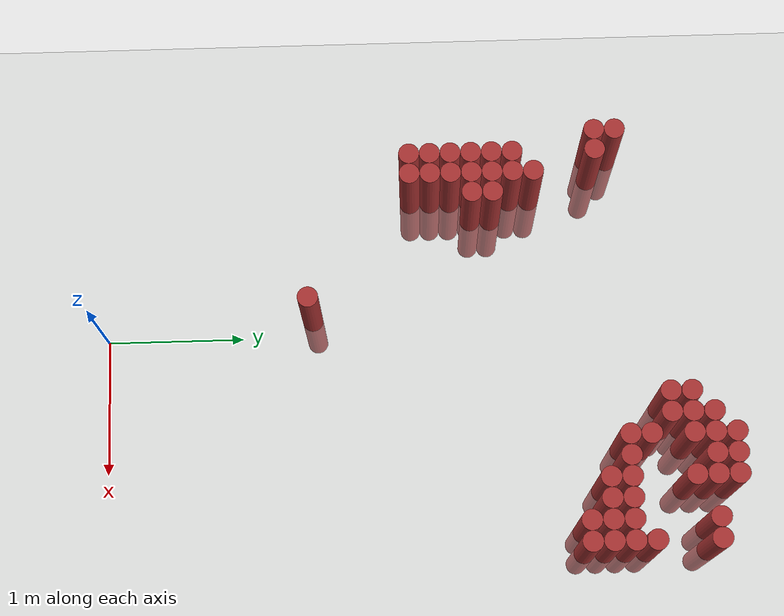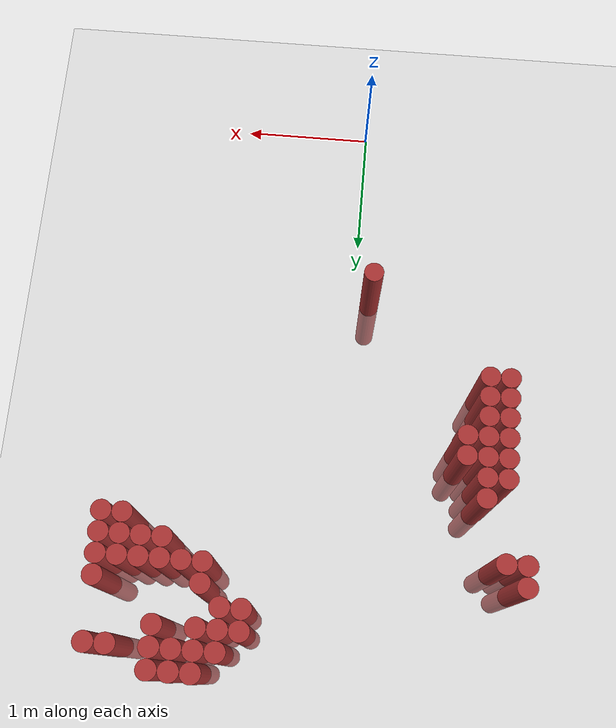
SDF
<sdf version="1.6">
 <world name="default">
  <model name="ground_plane">
   <static>1</static>
   <link name="link">
    <collision name="collision">
     <geometry><plane><normal>0 0 1</normal><size>100 100</size></plane></geometry>
     <surface><friction><ode><mu>100</mu><mu2>50</mu2></ode></friction></surface>
    </collision>
    <visual name="visual">
     <cast_shadows>0</cast_shadows>
     <geometry><plane><normal>0 0 1</normal><size>100 100</size></plane></geometry>
     <material>
      <script><uri>file://media/materials/scripts/gazebo.material</uri><name>Gazebo/Grey</name></script>
     </material>
    </visual>
   </link>
  </model>
  <model name="unit_cylinder_158">
   <static>1</static>
   <pose>-1.325000 3.625000 0.000000 0.000000 0.000000 0.000000</pose>
   <link name="link">
    <inertial>
     <mass>1</mass>
     <inertia><ixx>0.145833</ixx><ixy>0</ixy><ixz>0</ixz><iyy>0.145833</iyy><iyz>0</iyz><izz>0.125</izz></inertia>
    </inertial>
    <collision name="collision">
     <geometry><cylinder><radius>0.075000</radius><length>1.5</length></cylinder></geometry>
    </collision>
    <visual name="visual">
     <geometry><cylinder><radius>0.075000</radius><length>1.5</length></cylinder></geometry>
     <material>
      <ambient>0.648000 0.192000 0.192000 1</ambient>
      <diffuse>0.648000 0.192000 0.192000 1</diffuse>
     </material>
     <material>
      <script><name>Gazebo/Grey</name><uri>file://media/materials/scripts/gazebo.material</uri></script>
     </material>
    </visual>
   </link>
  </model>
  <model name="unit_cylinder_159">
   <static>1</static>
   <pose>-1.325000 3.775000 0.000000 0.000000 0.000000 0.000000</pose>
   <link name="link">
    <inertial>
     <mass>1</mass>
     <inertia><ixx>0.145833</ixx><ixy>0</ixy><ixz>0</ixz><iyy>0.145833</iyy><iyz>0</iyz><izz>0.125</izz></inertia>
    </inertial>
    <collision name="collision">
     <geometry><cylinder><radius>0.075000</radius><length>1.5</length></cylinder></geometry>
    </collision>
    <visual name="visual">
     <geometry><cylinder><radius>0.075000</radius><length>1.5</length></cylinder></geometry>
     <material>
      <ambient>0.648000 0.192000 0.192000 1</ambient>
      <diffuse>0.648000 0.192000 0.192000 1</diffuse>
     </material>
     <material>
      <script><name>Gazebo/Grey</name><uri>file://media/materials/scripts/gazebo.material</uri></script>
     </material>
    </visual>
   </link>
  </model>
  <model name="unit_cylinder_160">
   <static>1</static>
   <pose>-1.175000 2.275000 0.000000 0.000000 0.000000 0.000000</pose>
   <link name="link">
    <inertial>
     <mass>1</mass>
     <inertia><ixx>0.145833</ixx><ixy>0</ixy><ixz>0</ixz><iyy>0.145833</iyy><iyz>0</iyz><izz>0.125</izz></inertia>
    </inertial>
    <collision name="collision">
     <geometry><cylinder><radius>0.075000</radius><length>1.5</length></cylinder></geometry>
    </collision>
    <visual name="visual">
     <geometry><cylinder><radius>0.075000</radius><length>1.5</length></cylinder></geometry>
     <material>
      <ambient>0.648000 0.192000 0.192000 1</ambient>
      <diffuse>0.648000 0.192000 0.192000 1</diffuse>
     </material>
     <material>
      <script><name>Gazebo/Grey</name><uri>file://media/materials/scripts/gazebo.material</uri></script>
     </material>
    </visual>
   </link>
  </model>
  <model name="unit_cylinder_161">
   <static>1</static>
   <pose>-1.175000 2.425000 0.000000 0.000000 0.000000 0.000000</pose>
   <link name="link">
    <inertial>
     <mass>1</mass>
     <inertia><ixx>0.145833</ixx><ixy>0</ixy><ixz>0</ixz><iyy>0.145833</iyy><iyz>0</iyz><izz>0.125</izz></inertia>
    </inertial>
    <collision name="collision">
     <geometry><cylinder><radius>0.075000</radius><length>1.5</length></cylinder></geometry>
    </collision>
    <visual name="visual">
     <geometry><cylinder><radius>0.075000</radius><length>1.5</length></cylinder></geometry>
     <material>
      <ambient>0.648000 0.192000 0.192000 1</ambient>
      <diffuse>0.648000 0.192000 0.192000 1</diffuse>
     </material>
     <material>
      <script><name>Gazebo/Grey</name><uri>file://media/materials/scripts/gazebo.material</uri></script>
     </material>
    </visual>
   </link>
  </model>
  <model name="unit_cylinder_162">
   <static>1</static>
   <pose>-1.175000 2.575000 0.000000 0.000000 0.000000 0.000000</pose>
   <link name="link">
    <inertial>
     <mass>1</mass>
     <inertia><ixx>0.145833</ixx><ixy>0</ixy><ixz>0</ixz><iyy>0.145833</iyy><iyz>0</iyz><izz>0.125</izz></inertia>
    </inertial>
    <collision name="collision">
     <geometry><cylinder><radius>0.075000</radius><length>1.5</length></cylinder></geometry>
    </collision>
    <visual name="visual">
     <geometry><cylinder><radius>0.075000</radius><length>1.5</length></cylinder></geometry>
     <material>
      <ambient>0.648000 0.192000 0.192000 1</ambient>
      <diffuse>0.648000 0.192000 0.192000 1</diffuse>
     </material>
     <material>
      <script><name>Gazebo/Grey</name><uri>file://media/materials/scripts/gazebo.material</uri></script>
     </material>
    </visual>
   </link>
  </model>
  <model name="unit_cylinder_163">
   <static>1</static>
   <pose>-1.175000 2.725000 0.000000 0.000000 0.000000 0.000000</pose>
   <link name="link">
    <inertial>
     <mass>1</mass>
     <inertia><ixx>0.145833</ixx><ixy>0</ixy><ixz>0</ixz><iyy>0.145833</iyy><iyz>0</iyz><izz>0.125</izz></inertia>
    </inertial>
    <collision name="collision">
     <geometry><cylinder><radius>0.075000</radius><length>1.5</length></cylinder></geometry>
    </collision>
    <visual name="visual">
     <geometry><cylinder><radius>0.075000</radius><length>1.5</length></cylinder></geometry>
     <material>
      <ambient>0.648000 0.192000 0.192000 1</ambient>
      <diffuse>0.648000 0.192000 0.192000 1</diffuse>
     </material>
     <material>
      <script><name>Gazebo/Grey</name><uri>file://media/materials/scripts/gazebo.material</uri></script>
     </material>
    </visual>
   </link>
  </model>
  <model name="unit_cylinder_164">
   <static>1</static>
   <pose>-1.175000 2.875000 0.000000 0.000000 0.000000 0.000000</pose>
   <link name="link">
    <inertial>
     <mass>1</mass>
     <inertia><ixx>0.145833</ixx><ixy>0</ixy><ixz>0</ixz><iyy>0.145833</iyy><iyz>0</iyz><izz>0.125</izz></inertia>
    </inertial>
    <collision name="collision">
     <geometry><cylinder><radius>0.075000</radius><length>1.5</length></cylinder></geometry>
    </collision>
    <visual name="visual">
     <geometry><cylinder><radius>0.075000</radius><length>1.5</length></cylinder></geometry>
     <material>
      <ambient>0.648000 0.192000 0.192000 1</ambient>
      <diffuse>0.648000 0.192000 0.192000 1</diffuse>
     </material>
     <material>
      <script><name>Gazebo/Grey</name><uri>file://media/materials/scripts/gazebo.material</uri></script>
     </material>
    </visual>
   </link>
  </model>
  <model name="unit_cylinder_165">
   <static>1</static>
   <pose>-1.175000 3.025000 0.000000 0.000000 0.000000 0.000000</pose>
   <link name="link">
    <inertial>
     <mass>1</mass>
     <inertia><ixx>0.145833</ixx><ixy>0</ixy><ixz>0</ixz><iyy>0.145833</iyy><iyz>0</iyz><izz>0.125</izz></inertia>
    </inertial>
    <collision name="collision">
     <geometry><cylinder><radius>0.075000</radius><length>1.5</length></cylinder></geometry>
    </collision>
    <visual name="visual">
     <geometry><cylinder><radius>0.075000</radius><length>1.5</length></cylinder></geometry>
     <material>
      <ambient>0.648000 0.192000 0.192000 1</ambient>
      <diffuse>0.648000 0.192000 0.192000 1</diffuse>
     </material>
     <material>
      <script><name>Gazebo/Grey</name><uri>file://media/materials/scripts/gazebo.material</uri></script>
     </material>
    </visual>
   </link>
  </model>
  <model name="unit_cylinder_166">
   <static>1</static>
   <pose>-1.175000 3.625000 0.000000 0.000000 0.000000 0.000000</pose>
   <link name="link">
    <inertial>
     <mass>1</mass>
     <inertia><ixx>0.145833</ixx><ixy>0</ixy><ixz>0</ixz><iyy>0.145833</iyy><iyz>0</iyz><izz>0.125</izz></inertia>
    </inertial>
    <collision name="collision">
     <geometry><cylinder><radius>0.075000</radius><length>1.5</length></cylinder></geometry>
    </collision>
    <visual name="visual">
     <geometry><cylinder><radius>0.075000</radius><length>1.5</length></cylinder></geometry>
     <material>
      <ambient>0.648000 0.192000 0.192000 1</ambient>
      <diffuse>0.648000 0.192000 0.192000 1</diffuse>
     </material>
     <material>
      <script><name>Gazebo/Grey</name><uri>file://media/materials/scripts/gazebo.material</uri></script>
     </material>
    </visual>
   </link>
  </model>
  <model name="unit_cylinder_168">
   <static>1</static>
   <pose>-1.025000 2.275000 0.000000 0.000000 0.000000 0.000000</pose>
   <link name="link">
    <inertial>
     <mass>1</mass>
     <inertia><ixx>0.145833</ixx><ixy>0</ixy><ixz>0</ixz><iyy>0.145833</iyy><iyz>0</iyz><izz>0.125</izz></inertia>
    </inertial>
    <collision name="collision">
     <geometry><cylinder><radius>0.075000</radius><length>1.5</length></cylinder></geometry>
    </collision>
    <visual name="visual">
     <geometry><cylinder><radius>0.075000</radius><length>1.5</length></cylinder></geometry>
     <material>
      <ambient>0.648000 0.192000 0.192000 1</ambient>
      <diffuse>0.648000 0.192000 0.192000 1</diffuse>
     </material>
     <material>
      <script><name>Gazebo/Grey</name><uri>file://media/materials/scripts/gazebo.material</uri></script>
     </material>
    </visual>
   </link>
  </model>
  <model name="unit_cylinder_169">
   <static>1</static>
   <pose>-1.025000 2.425000 0.000000 0.000000 0.000000 0.000000</pose>
   <link name="link">
    <inertial>
     <mass>1</mass>
     <inertia><ixx>0.145833</ixx><ixy>0</ixy><ixz>0</ixz><iyy>0.145833</iyy><iyz>0</iyz><izz>0.125</izz></inertia>
    </inertial>
    <collision name="collision">
     <geometry><cylinder><radius>0.075000</radius><length>1.5</length></cylinder></geometry>
    </collision>
    <visual name="visual">
     <geometry><cylinder><radius>0.075000</radius><length>1.5</length></cylinder></geometry>
     <material>
      <ambient>0.648000 0.192000 0.192000 1</ambient>
      <diffuse>0.648000 0.192000 0.192000 1</diffuse>
     </material>
     <material>
      <script><name>Gazebo/Grey</name><uri>file://media/materials/scripts/gazebo.material</uri></script>
     </material>
    </visual>
   </link>
  </model>
  <model name="unit_cylinder_170">
   <static>1</static>
   <pose>-1.025000 2.575000 0.000000 0.000000 0.000000 0.000000</pose>
   <link name="link">
    <inertial>
     <mass>1</mass>
     <inertia><ixx>0.145833</ixx><ixy>0</ixy><ixz>0</ixz><iyy>0.145833</iyy><iyz>0</iyz><izz>0.125</izz></inertia>
    </inertial>
    <collision name="collision">
     <geometry><cylinder><radius>0.075000</radius><length>1.5</length></cylinder></geometry>
    </collision>
    <visual name="visual">
     <geometry><cylinder><radius>0.075000</radius><length>1.5</length></cylinder></geometry>
     <material>
      <ambient>0.648000 0.192000 0.192000 1</ambient>
      <diffuse>0.648000 0.192000 0.192000 1</diffuse>
     </material>
     <material>
      <script><name>Gazebo/Grey</name><uri>file://media/materials/scripts/gazebo.material</uri></script>
     </material>
    </visual>
   </link>
  </model>
  <model name="unit_cylinder_171">
   <static>1</static>
   <pose>-1.025000 2.725000 0.000000 0.000000 0.000000 0.000000</pose>
   <link name="link">
    <inertial>
     <mass>1</mass>
     <inertia><ixx>0.145833</ixx><ixy>0</ixy><ixz>0</ixz><iyy>0.145833</iyy><iyz>0</iyz><izz>0.125</izz></inertia>
    </inertial>
    <collision name="collision">
     <geometry><cylinder><radius>0.075000</radius><length>1.5</length></cylinder></geometry>
    </collision>
    <visual name="visual">
     <geometry><cylinder><radius>0.075000</radius><length>1.5</length></cylinder></geometry>
     <material>
      <ambient>0.648000 0.192000 0.192000 1</ambient>
      <diffuse>0.648000 0.192000 0.192000 1</diffuse>
     </material>
     <material>
      <script><name>Gazebo/Grey</name><uri>file://media/materials/scripts/gazebo.material</uri></script>
     </material>
    </visual>
   </link>
  </model>
  <model name="unit_cylinder_172">
   <static>1</static>
   <pose>-1.025000 2.875000 0.000000 0.000000 0.000000 0.000000</pose>
   <link name="link">
    <inertial>
     <mass>1</mass>
     <inertia><ixx>0.145833</ixx><ixy>0</ixy><ixz>0</ixz><iyy>0.145833</iyy><iyz>0</iyz><izz>0.125</izz></inertia>
    </inertial>
    <collision name="collision">
     <geometry><cylinder><radius>0.075000</radius><length>1.5</length></cylinder></geometry>
    </collision>
    <visual name="visual">
     <geometry><cylinder><radius>0.075000</radius><length>1.5</length></cylinder></geometry>
     <material>
      <ambient>0.648000 0.192000 0.192000 1</ambient>
      <diffuse>0.648000 0.192000 0.192000 1</diffuse>
     </material>
     <material>
      <script><name>Gazebo/Grey</name><uri>file://media/materials/scripts/gazebo.material</uri></script>
     </material>
    </visual>
   </link>
  </model>
  <model name="unit_cylinder_173">
   <static>1</static>
   <pose>-1.025000 3.025000 0.000000 0.000000 0.000000 0.000000</pose>
   <link name="link">
    <inertial>
     <mass>1</mass>
     <inertia><ixx>0.145833</ixx><ixy>0</ixy><ixz>0</ixz><iyy>0.145833</iyy><iyz>0</iyz><izz>0.125</izz></inertia>
    </inertial>
    <collision name="collision">
     <geometry><cylinder><radius>0.075000</radius><length>1.5</length></cylinder></geometry>
    </collision>
    <visual name="visual">
     <geometry><cylinder><radius>0.075000</radius><length>1.5</length></cylinder></geometry>
     <material>
      <ambient>0.648000 0.192000 0.192000 1</ambient>
      <diffuse>0.648000 0.192000 0.192000 1</diffuse>
     </material>
     <material>
      <script><name>Gazebo/Grey</name><uri>file://media/materials/scripts/gazebo.material</uri></script>
     </material>
    </visual>
   </link>
  </model>
  <model name="unit_cylinder_174">
   <static>1</static>
   <pose>-1.025000 3.175000 0.000000 0.000000 0.000000 0.000000</pose>
   <link name="link">
    <inertial>
     <mass>1</mass>
     <inertia><ixx>0.145833</ixx><ixy>0</ixy><ixz>0</ixz><iyy>0.145833</iyy><iyz>0</iyz><izz>0.125</izz></inertia>
    </inertial>
    <collision name="collision">
     <geometry><cylinder><radius>0.075000</radius><length>1.5</length></cylinder></geometry>
    </collision>
    <visual name="visual">
     <geometry><cylinder><radius>0.075000</radius><length>1.5</length></cylinder></geometry>
     <material>
      <ambient>0.648000 0.192000 0.192000 1</ambient>
      <diffuse>0.648000 0.192000 0.192000 1</diffuse>
     </material>
     <material>
      <script><name>Gazebo/Grey</name><uri>file://media/materials/scripts/gazebo.material</uri></script>
     </material>
    </visual>
   </link>
  </model>
  <model name="unit_cylinder_179">
   <static>1</static>
   <pose>-0.875000 2.725000 0.000000 0.000000 0.000000 0.000000</pose>
   <link name="link">
    <inertial>
     <mass>1</mass>
     <inertia><ixx>0.145833</ixx><ixy>0</ixy><ixz>0</ixz><iyy>0.145833</iyy><iyz>0</iyz><izz>0.125</izz></inertia>
    </inertial>
    <collision name="collision">
     <geometry><cylinder><radius>0.075000</radius><length>1.5</length></cylinder></geometry>
    </collision>
    <visual name="visual">
     <geometry><cylinder><radius>0.075000</radius><length>1.5</length></cylinder></geometry>
     <material>
      <ambient>0.648000 0.192000 0.192000 1</ambient>
      <diffuse>0.648000 0.192000 0.192000 1</diffuse>
     </material>
     <material>
      <script><name>Gazebo/Grey</name><uri>file://media/materials/scripts/gazebo.material</uri></script>
     </material>
    </visual>
   </link>
  </model>
  <model name="unit_cylinder_180">
   <static>1</static>
   <pose>-0.875000 2.875000 0.000000 0.000000 0.000000 0.000000</pose>
   <link name="link">
    <inertial>
     <mass>1</mass>
     <inertia><ixx>0.145833</ixx><ixy>0</ixy><ixz>0</ixz><iyy>0.145833</iyy><iyz>0</iyz><izz>0.125</izz></inertia>
    </inertial>
    <collision name="collision">
     <geometry><cylinder><radius>0.075000</radius><length>1.5</length></cylinder></geometry>
    </collision>
    <visual name="visual">
     <geometry><cylinder><radius>0.075000</radius><length>1.5</length></cylinder></geometry>
     <material>
      <ambient>0.648000 0.192000 0.192000 1</ambient>
      <diffuse>0.648000 0.192000 0.192000 1</diffuse>
     </material>
     <material>
      <script><name>Gazebo/Grey</name><uri>file://media/materials/scripts/gazebo.material</uri></script>
     </material>
    </visual>
   </link>
  </model>
  <model name="unit_cylinder_183">
   <static>1</static>
   <pose>-0.125000 1.525000 0.000000 0.000000 0.000000 0.000000</pose>
   <link name="link">
    <inertial>
     <mass>1</mass>
     <inertia><ixx>0.145833</ixx><ixy>0</ixy><ixz>0</ixz><iyy>0.145833</iyy><iyz>0</iyz><izz>0.125</izz></inertia>
    </inertial>
    <collision name="collision">
     <geometry><cylinder><radius>0.075000</radius><length>1.5</length></cylinder></geometry>
    </collision>
    <visual name="visual">
     <geometry><cylinder><radius>0.075000</radius><length>1.5</length></cylinder></geometry>
     <material>
      <ambient>0.648000 0.192000 0.192000 1</ambient>
      <diffuse>0.648000 0.192000 0.192000 1</diffuse>
     </material>
     <material>
      <script><name>Gazebo/Grey</name><uri>file://media/materials/scripts/gazebo.material</uri></script>
     </material>
    </visual>
   </link>
  </model>
  <model name="unit_cylinder_192">
   <static>1</static>
   <pose>0.625000 4.075000 0.000000 0.000000 0.000000 0.000000</pose>
   <link name="link">
    <inertial>
     <mass>1</mass>
     <inertia><ixx>0.145833</ixx><ixy>0</ixy><ixz>0</ixz><iyy>0.145833</iyy><iyz>0</iyz><izz>0.125</izz></inertia>
    </inertial>
    <collision name="collision">
     <geometry><cylinder><radius>0.075000</radius><length>1.5</length></cylinder></geometry>
    </collision>
    <visual name="visual">
     <geometry><cylinder><radius>0.075000</radius><length>1.5</length></cylinder></geometry>
     <material>
      <ambient>0.648000 0.192000 0.192000 1</ambient>
      <diffuse>0.648000 0.192000 0.192000 1</diffuse>
     </material>
     <material>
      <script><name>Gazebo/Grey</name><uri>file://media/materials/scripts/gazebo.material</uri></script>
     </material>
    </visual>
   </link>
  </model>
  <model name="unit_cylinder_193">
   <static>1</static>
   <pose>0.625000 4.225000 0.000000 0.000000 0.000000 0.000000</pose>
   <link name="link">
    <inertial>
     <mass>1</mass>
     <inertia><ixx>0.145833</ixx><ixy>0</ixy><ixz>0</ixz><iyy>0.145833</iyy><iyz>0</iyz><izz>0.125</izz></inertia>
    </inertial>
    <collision name="collision">
     <geometry><cylinder><radius>0.075000</radius><length>1.5</length></cylinder></geometry>
    </collision>
    <visual name="visual">
     <geometry><cylinder><radius>0.075000</radius><length>1.5</length></cylinder></geometry>
     <material>
      <ambient>0.648000 0.192000 0.192000 1</ambient>
      <diffuse>0.648000 0.192000 0.192000 1</diffuse>
     </material>
     <material>
      <script><name>Gazebo/Grey</name><uri>file://media/materials/scripts/gazebo.material</uri></script>
     </material>
    </visual>
   </link>
  </model>
  <model name="unit_cylinder_194">
   <static>1</static>
   <pose>0.775000 4.075000 0.000000 0.000000 0.000000 0.000000</pose>
   <link name="link">
    <inertial>
     <mass>1</mass>
     <inertia><ixx>0.145833</ixx><ixy>0</ixy><ixz>0</ixz><iyy>0.145833</iyy><iyz>0</iyz><izz>0.125</izz></inertia>
    </inertial>
    <collision name="collision">
     <geometry><cylinder><radius>0.075000</radius><length>1.5</length></cylinder></geometry>
    </collision>
    <visual name="visual">
     <geometry><cylinder><radius>0.075000</radius><length>1.5</length></cylinder></geometry>
     <material>
      <ambient>0.648000 0.192000 0.192000 1</ambient>
      <diffuse>0.648000 0.192000 0.192000 1</diffuse>
     </material>
     <material>
      <script><name>Gazebo/Grey</name><uri>file://media/materials/scripts/gazebo.material</uri></script>
     </material>
    </visual>
   </link>
  </model>
  <model name="unit_cylinder_195">
   <static>1</static>
   <pose>0.775000 4.225000 0.000000 0.000000 0.000000 0.000000</pose>
   <link name="link">
    <inertial>
     <mass>1</mass>
     <inertia><ixx>0.145833</ixx><ixy>0</ixy><ixz>0</ixz><iyy>0.145833</iyy><iyz>0</iyz><izz>0.125</izz></inertia>
    </inertial>
    <collision name="collision">
     <geometry><cylinder><radius>0.075000</radius><length>1.5</length></cylinder></geometry>
    </collision>
    <visual name="visual">
     <geometry><cylinder><radius>0.075000</radius><length>1.5</length></cylinder></geometry>
     <material>
      <ambient>0.648000 0.192000 0.192000 1</ambient>
      <diffuse>0.648000 0.192000 0.192000 1</diffuse>
     </material>
     <material>
      <script><name>Gazebo/Grey</name><uri>file://media/materials/scripts/gazebo.material</uri></script>
     </material>
    </visual>
   </link>
  </model>
  <model name="unit_cylinder_196">
   <static>1</static>
   <pose>0.775000 4.375000 0.000000 0.000000 0.000000 0.000000</pose>
   <link name="link">
    <inertial>
     <mass>1</mass>
     <inertia><ixx>0.145833</ixx><ixy>0</ixy><ixz>0</ixz><iyy>0.145833</iyy><iyz>0</iyz><izz>0.125</izz></inertia>
    </inertial>
    <collision name="collision">
     <geometry><cylinder><radius>0.075000</radius><length>1.5</length></cylinder></geometry>
    </collision>
    <visual name="visual">
     <geometry><cylinder><radius>0.075000</radius><length>1.5</length></cylinder></geometry>
     <material>
      <ambient>0.648000 0.192000 0.192000 1</ambient>
      <diffuse>0.648000 0.192000 0.192000 1</diffuse>
     </material>
     <material>
      <script><name>Gazebo/Grey</name><uri>file://media/materials/scripts/gazebo.material</uri></script>
     </material>
    </visual>
   </link>
  </model>
  <model name="unit_cylinder_197">
   <static>1</static>
   <pose>0.925000 3.775000 0.000000 0.000000 0.000000 0.000000</pose>
   <link name="link">
    <inertial>
     <mass>1</mass>
     <inertia><ixx>0.145833</ixx><ixy>0</ixy><ixz>0</ixz><iyy>0.145833</iyy><iyz>0</iyz><izz>0.125</izz></inertia>
    </inertial>
    <collision name="collision">
     <geometry><cylinder><radius>0.075000</radius><length>1.5</length></cylinder></geometry>
    </collision>
    <visual name="visual">
     <geometry><cylinder><radius>0.075000</radius><length>1.5</length></cylinder></geometry>
     <material>
      <ambient>0.648000 0.192000 0.192000 1</ambient>
      <diffuse>0.648000 0.192000 0.192000 1</diffuse>
     </material>
     <material>
      <script><name>Gazebo/Grey</name><uri>file://media/materials/scripts/gazebo.material</uri></script>
     </material>
    </visual>
   </link>
  </model>
  <model name="unit_cylinder_198">
   <static>1</static>
   <pose>0.925000 3.925000 0.000000 0.000000 0.000000 0.000000</pose>
   <link name="link">
    <inertial>
     <mass>1</mass>
     <inertia><ixx>0.145833</ixx><ixy>0</ixy><ixz>0</ixz><iyy>0.145833</iyy><iyz>0</iyz><izz>0.125</izz></inertia>
    </inertial>
    <collision name="collision">
     <geometry><cylinder><radius>0.075000</radius><length>1.5</length></cylinder></geometry>
    </collision>
    <visual name="visual">
     <geometry><cylinder><radius>0.075000</radius><length>1.5</length></cylinder></geometry>
     <material>
      <ambient>0.648000 0.192000 0.192000 1</ambient>
      <diffuse>0.648000 0.192000 0.192000 1</diffuse>
     </material>
     <material>
      <script><name>Gazebo/Grey</name><uri>file://media/materials/scripts/gazebo.material</uri></script>
     </material>
    </visual>
   </link>
  </model>
  <model name="unit_cylinder_199">
   <static>1</static>
   <pose>0.925000 4.225000 0.000000 0.000000 0.000000 0.000000</pose>
   <link name="link">
    <inertial>
     <mass>1</mass>
     <inertia><ixx>0.145833</ixx><ixy>0</ixy><ixz>0</ixz><iyy>0.145833</iyy><iyz>0</iyz><izz>0.125</izz></inertia>
    </inertial>
    <collision name="collision">
     <geometry><cylinder><radius>0.075000</radius><length>1.5</length></cylinder></geometry>
    </collision>
    <visual name="visual">
     <geometry><cylinder><radius>0.075000</radius><length>1.5</length></cylinder></geometry>
     <material>
      <ambient>0.648000 0.192000 0.192000 1</ambient>
      <diffuse>0.648000 0.192000 0.192000 1</diffuse>
     </material>
     <material>
      <script><name>Gazebo/Grey</name><uri>file://media/materials/scripts/gazebo.material</uri></script>
     </material>
    </visual>
   </link>
  </model>
  <model name="unit_cylinder_200">
   <static>1</static>
   <pose>0.925000 4.375000 0.000000 0.000000 0.000000 0.000000</pose>
   <link name="link">
    <inertial>
     <mass>1</mass>
     <inertia><ixx>0.145833</ixx><ixy>0</ixy><ixz>0</ixz><iyy>0.145833</iyy><iyz>0</iyz><izz>0.125</izz></inertia>
    </inertial>
    <collision name="collision">
     <geometry><cylinder><radius>0.075000</radius><length>1.5</length></cylinder></geometry>
    </collision>
    <visual name="visual">
     <geometry><cylinder><radius>0.075000</radius><length>1.5</length></cylinder></geometry>
     <material>
      <ambient>0.648000 0.192000 0.192000 1</ambient>
      <diffuse>0.648000 0.192000 0.192000 1</diffuse>
     </material>
     <material>
      <script><name>Gazebo/Grey</name><uri>file://media/materials/scripts/gazebo.material</uri></script>
     </material>
    </visual>
   </link>
  </model>
  <model name="unit_cylinder_201">
   <static>1</static>
   <pose>0.925000 4.525000 0.000000 0.000000 0.000000 0.000000</pose>
   <link name="link">
    <inertial>
     <mass>1</mass>
     <inertia><ixx>0.145833</ixx><ixy>0</ixy><ixz>0</ixz><iyy>0.145833</iyy><iyz>0</iyz><izz>0.125</izz></inertia>
    </inertial>
    <collision name="collision">
     <geometry><cylinder><radius>0.075000</radius><length>1.5</length></cylinder></geometry>
    </collision>
    <visual name="visual">
     <geometry><cylinder><radius>0.075000</radius><length>1.5</length></cylinder></geometry>
     <material>
      <ambient>0.648000 0.192000 0.192000 1</ambient>
      <diffuse>0.648000 0.192000 0.192000 1</diffuse>
     </material>
     <material>
      <script><name>Gazebo/Grey</name><uri>file://media/materials/scripts/gazebo.material</uri></script>
     </material>
    </visual>
   </link>
  </model>
  <model name="unit_cylinder_202">
   <static>1</static>
   <pose>1.075000 3.775000 0.000000 0.000000 0.000000 0.000000</pose>
   <link name="link">
    <inertial>
     <mass>1</mass>
     <inertia><ixx>0.145833</ixx><ixy>0</ixy><ixz>0</ixz><iyy>0.145833</iyy><iyz>0</iyz><izz>0.125</izz></inertia>
    </inertial>
    <collision name="collision">
     <geometry><cylinder><radius>0.075000</radius><length>1.5</length></cylinder></geometry>
    </collision>
    <visual name="visual">
     <geometry><cylinder><radius>0.075000</radius><length>1.5</length></cylinder></geometry>
     <material>
      <ambient>0.648000 0.192000 0.192000 1</ambient>
      <diffuse>0.648000 0.192000 0.192000 1</diffuse>
     </material>
     <material>
      <script><name>Gazebo/Grey</name><uri>file://media/materials/scripts/gazebo.material</uri></script>
     </material>
    </visual>
   </link>
  </model>
  <model name="unit_cylinder_203">
   <static>1</static>
   <pose>1.075000 4.375000 0.000000 0.000000 0.000000 0.000000</pose>
   <link name="link">
    <inertial>
     <mass>1</mass>
     <inertia><ixx>0.145833</ixx><ixy>0</ixy><ixz>0</ixz><iyy>0.145833</iyy><iyz>0</iyz><izz>0.125</izz></inertia>
    </inertial>
    <collision name="collision">
     <geometry><cylinder><radius>0.075000</radius><length>1.5</length></cylinder></geometry>
    </collision>
    <visual name="visual">
     <geometry><cylinder><radius>0.075000</radius><length>1.5</length></cylinder></geometry>
     <material>
      <ambient>0.648000 0.192000 0.192000 1</ambient>
      <diffuse>0.648000 0.192000 0.192000 1</diffuse>
     </material>
     <material>
      <script><name>Gazebo/Grey</name><uri>file://media/materials/scripts/gazebo.material</uri></script>
     </material>
    </visual>
   </link>
  </model>
  <model name="unit_cylinder_204">
   <static>1</static>
   <pose>1.075000 4.525000 0.000000 0.000000 0.000000 0.000000</pose>
   <link name="link">
    <inertial>
     <mass>1</mass>
     <inertia><ixx>0.145833</ixx><ixy>0</ixy><ixz>0</ixz><iyy>0.145833</iyy><iyz>0</iyz><izz>0.125</izz></inertia>
    </inertial>
    <collision name="collision">
     <geometry><cylinder><radius>0.075000</radius><length>1.5</length></cylinder></geometry>
    </collision>
    <visual name="visual">
     <geometry><cylinder><radius>0.075000</radius><length>1.5</length></cylinder></geometry>
     <material>
      <ambient>0.648000 0.192000 0.192000 1</ambient>
      <diffuse>0.648000 0.192000 0.192000 1</diffuse>
     </material>
     <material>
      <script><name>Gazebo/Grey</name><uri>file://media/materials/scripts/gazebo.material</uri></script>
     </material>
    </visual>
   </link>
  </model>
  <model name="unit_cylinder_205">
   <static>1</static>
   <pose>1.225000 3.625000 0.000000 0.000000 0.000000 0.000000</pose>
   <link name="link">
    <inertial>
     <mass>1</mass>
     <inertia><ixx>0.145833</ixx><ixy>0</ixy><ixz>0</ixz><iyy>0.145833</iyy><iyz>0</iyz><izz>0.125</izz></inertia>
    </inertial>
    <collision name="collision">
     <geometry><cylinder><radius>0.075000</radius><length>1.5</length></cylinder></geometry>
    </collision>
    <visual name="visual">
     <geometry><cylinder><radius>0.075000</radius><length>1.5</length></cylinder></geometry>
     <material>
      <ambient>0.648000 0.192000 0.192000 1</ambient>
      <diffuse>0.648000 0.192000 0.192000 1</diffuse>
     </material>
     <material>
      <script><name>Gazebo/Grey</name><uri>file://media/materials/scripts/gazebo.material</uri></script>
     </material>
    </visual>
   </link>
  </model>
  <model name="unit_cylinder_206">
   <static>1</static>
   <pose>1.225000 3.775000 0.000000 0.000000 0.000000 0.000000</pose>
   <link name="link">
    <inertial>
     <mass>1</mass>
     <inertia><ixx>0.145833</ixx><ixy>0</ixy><ixz>0</ixz><iyy>0.145833</iyy><iyz>0</iyz><izz>0.125</izz></inertia>
    </inertial>
    <collision name="collision">
     <geometry><cylinder><radius>0.075000</radius><length>1.5</length></cylinder></geometry>
    </collision>
    <visual name="visual">
     <geometry><cylinder><radius>0.075000</radius><length>1.5</length></cylinder></geometry>
     <material>
      <ambient>0.648000 0.192000 0.192000 1</ambient>
      <diffuse>0.648000 0.192000 0.192000 1</diffuse>
     </material>
     <material>
      <script><name>Gazebo/Grey</name><uri>file://media/materials/scripts/gazebo.material</uri></script>
     </material>
    </visual>
   </link>
  </model>
  <model name="unit_cylinder_207">
   <static>1</static>
   <pose>1.225000 4.225000 0.000000 0.000000 0.000000 0.000000</pose>
   <link name="link">
    <inertial>
     <mass>1</mass>
     <inertia><ixx>0.145833</ixx><ixy>0</ixy><ixz>0</ixz><iyy>0.145833</iyy><iyz>0</iyz><izz>0.125</izz></inertia>
    </inertial>
    <collision name="collision">
     <geometry><cylinder><radius>0.075000</radius><length>1.5</length></cylinder></geometry>
    </collision>
    <visual name="visual">
     <geometry><cylinder><radius>0.075000</radius><length>1.5</length></cylinder></geometry>
     <material>
      <ambient>0.648000 0.192000 0.192000 1</ambient>
      <diffuse>0.648000 0.192000 0.192000 1</diffuse>
     </material>
     <material>
      <script><name>Gazebo/Grey</name><uri>file://media/materials/scripts/gazebo.material</uri></script>
     </material>
    </visual>
   </link>
  </model>
  <model name="unit_cylinder_208">
   <static>1</static>
   <pose>1.225000 4.375000 0.000000 0.000000 0.000000 0.000000</pose>
   <link name="link">
    <inertial>
     <mass>1</mass>
     <inertia><ixx>0.145833</ixx><ixy>0</ixy><ixz>0</ixz><iyy>0.145833</iyy><iyz>0</iyz><izz>0.125</izz></inertia>
    </inertial>
    <collision name="collision">
     <geometry><cylinder><radius>0.075000</radius><length>1.5</length></cylinder></geometry>
    </collision>
    <visual name="visual">
     <geometry><cylinder><radius>0.075000</radius><length>1.5</length></cylinder></geometry>
     <material>
      <ambient>0.648000 0.192000 0.192000 1</ambient>
      <diffuse>0.648000 0.192000 0.192000 1</diffuse>
     </material>
     <material>
      <script><name>Gazebo/Grey</name><uri>file://media/materials/scripts/gazebo.material</uri></script>
     </material>
    </visual>
   </link>
  </model>
  <model name="unit_cylinder_209">
   <static>1</static>
   <pose>1.225000 4.525000 0.000000 0.000000 0.000000 0.000000</pose>
   <link name="link">
    <inertial>
     <mass>1</mass>
     <inertia><ixx>0.145833</ixx><ixy>0</ixy><ixz>0</ixz><iyy>0.145833</iyy><iyz>0</iyz><izz>0.125</izz></inertia>
    </inertial>
    <collision name="collision">
     <geometry><cylinder><radius>0.075000</radius><length>1.5</length></cylinder></geometry>
    </collision>
    <visual name="visual">
     <geometry><cylinder><radius>0.075000</radius><length>1.5</length></cylinder></geometry>
     <material>
      <ambient>0.648000 0.192000 0.192000 1</ambient>
      <diffuse>0.648000 0.192000 0.192000 1</diffuse>
     </material>
     <material>
      <script><name>Gazebo/Grey</name><uri>file://media/materials/scripts/gazebo.material</uri></script>
     </material>
    </visual>
   </link>
  </model>
  <model name="unit_cylinder_210">
   <static>1</static>
   <pose>1.375000 3.625000 0.000000 0.000000 0.000000 0.000000</pose>
   <link name="link">
    <inertial>
     <mass>1</mass>
     <inertia><ixx>0.145833</ixx><ixy>0</ixy><ixz>0</ixz><iyy>0.145833</iyy><iyz>0</iyz><izz>0.125</izz></inertia>
    </inertial>
    <collision name="collision">
     <geometry><cylinder><radius>0.075000</radius><length>1.5</length></cylinder></geometry>
    </collision>
    <visual name="visual">
     <geometry><cylinder><radius>0.075000</radius><length>1.5</length></cylinder></geometry>
     <material>
      <ambient>0.648000 0.192000 0.192000 1</ambient>
      <diffuse>0.648000 0.192000 0.192000 1</diffuse>
     </material>
     <material>
      <script><name>Gazebo/Grey</name><uri>file://media/materials/scripts/gazebo.material</uri></script>
     </material>
    </visual>
   </link>
  </model>
  <model name="unit_cylinder_211">
   <static>1</static>
   <pose>1.375000 3.775000 0.000000 0.000000 0.000000 0.000000</pose>
   <link name="link">
    <inertial>
     <mass>1</mass>
     <inertia><ixx>0.145833</ixx><ixy>0</ixy><ixz>0</ixz><iyy>0.145833</iyy><iyz>0</iyz><izz>0.125</izz></inertia>
    </inertial>
    <collision name="collision">
     <geometry><cylinder><radius>0.075000</radius><length>1.5</length></cylinder></geometry>
    </collision>
    <visual name="visual">
     <geometry><cylinder><radius>0.075000</radius><length>1.5</length></cylinder></geometry>
     <material>
      <ambient>0.648000 0.192000 0.192000 1</ambient>
      <diffuse>0.648000 0.192000 0.192000 1</diffuse>
     </material>
     <material>
      <script><name>Gazebo/Grey</name><uri>file://media/materials/scripts/gazebo.material</uri></script>
     </material>
    </visual>
   </link>
  </model>
  <model name="unit_cylinder_212">
   <static>1</static>
   <pose>1.525000 3.475000 0.000000 0.000000 0.000000 0.000000</pose>
   <link name="link">
    <inertial>
     <mass>1</mass>
     <inertia><ixx>0.145833</ixx><ixy>0</ixy><ixz>0</ixz><iyy>0.145833</iyy><iyz>0</iyz><izz>0.125</izz></inertia>
    </inertial>
    <collision name="collision">
     <geometry><cylinder><radius>0.075000</radius><length>1.5</length></cylinder></geometry>
    </collision>
    <visual name="visual">
     <geometry><cylinder><radius>0.075000</radius><length>1.5</length></cylinder></geometry>
     <material>
      <ambient>0.648000 0.192000 0.192000 1</ambient>
      <diffuse>0.648000 0.192000 0.192000 1</diffuse>
     </material>
     <material>
      <script><name>Gazebo/Grey</name><uri>file://media/materials/scripts/gazebo.material</uri></script>
     </material>
    </visual>
   </link>
  </model>
  <model name="unit_cylinder_213">
   <static>1</static>
   <pose>1.525000 3.625000 0.000000 0.000000 0.000000 0.000000</pose>
   <link name="link">
    <inertial>
     <mass>1</mass>
     <inertia><ixx>0.145833</ixx><ixy>0</ixy><ixz>0</ixz><iyy>0.145833</iyy><iyz>0</iyz><izz>0.125</izz></inertia>
    </inertial>
    <collision name="collision">
     <geometry><cylinder><radius>0.075000</radius><length>1.5</length></cylinder></geometry>
    </collision>
    <visual name="visual">
     <geometry><cylinder><radius>0.075000</radius><length>1.5</length></cylinder></geometry>
     <material>
      <ambient>0.648000 0.192000 0.192000 1</ambient>
      <diffuse>0.648000 0.192000 0.192000 1</diffuse>
     </material>
     <material>
      <script><name>Gazebo/Grey</name><uri>file://media/materials/scripts/gazebo.material</uri></script>
     </material>
    </visual>
   </link>
  </model>
  <model name="unit_cylinder_214">
   <static>1</static>
   <pose>1.525000 3.775000 0.000000 0.000000 0.000000 0.000000</pose>
   <link name="link">
    <inertial>
     <mass>1</mass>
     <inertia><ixx>0.145833</ixx><ixy>0</ixy><ixz>0</ixz><iyy>0.145833</iyy><iyz>0</iyz><izz>0.125</izz></inertia>
    </inertial>
    <collision name="collision">
     <geometry><cylinder><radius>0.075000</radius><length>1.5</length></cylinder></geometry>
    </collision>
    <visual name="visual">
     <geometry><cylinder><radius>0.075000</radius><length>1.5</length></cylinder></geometry>
     <material>
      <ambient>0.648000 0.192000 0.192000 1</ambient>
      <diffuse>0.648000 0.192000 0.192000 1</diffuse>
     </material>
     <material>
      <script><name>Gazebo/Grey</name><uri>file://media/materials/scripts/gazebo.material</uri></script>
     </material>
    </visual>
   </link>
  </model>
  <model name="unit_cylinder_215">
   <static>1</static>
   <pose>1.525000 4.375000 0.000000 0.000000 0.000000 0.000000</pose>
   <link name="link">
    <inertial>
     <mass>1</mass>
     <inertia><ixx>0.145833</ixx><ixy>0</ixy><ixz>0</ixz><iyy>0.145833</iyy><iyz>0</iyz><izz>0.125</izz></inertia>
    </inertial>
    <collision name="collision">
     <geometry><cylinder><radius>0.075000</radius><length>1.5</length></cylinder></geometry>
    </collision>
    <visual name="visual">
     <geometry><cylinder><radius>0.075000</radius><length>1.5</length></cylinder></geometry>
     <material>
      <ambient>0.648000 0.192000 0.192000 1</ambient>
      <diffuse>0.648000 0.192000 0.192000 1</diffuse>
     </material>
     <material>
      <script><name>Gazebo/Grey</name><uri>file://media/materials/scripts/gazebo.material</uri></script>
     </material>
    </visual>
   </link>
  </model>
  <model name="unit_cylinder_216">
   <static>1</static>
   <pose>1.675000 3.475000 0.000000 0.000000 0.000000 0.000000</pose>
   <link name="link">
    <inertial>
     <mass>1</mass>
     <inertia><ixx>0.145833</ixx><ixy>0</ixy><ixz>0</ixz><iyy>0.145833</iyy><iyz>0</iyz><izz>0.125</izz></inertia>
    </inertial>
    <collision name="collision">
     <geometry><cylinder><radius>0.075000</radius><length>1.5</length></cylinder></geometry>
    </collision>
    <visual name="visual">
     <geometry><cylinder><radius>0.075000</radius><length>1.5</length></cylinder></geometry>
     <material>
      <ambient>0.648000 0.192000 0.192000 1</ambient>
      <diffuse>0.648000 0.192000 0.192000 1</diffuse>
     </material>
     <material>
      <script><name>Gazebo/Grey</name><uri>file://media/materials/scripts/gazebo.material</uri></script>
     </material>
    </visual>
   </link>
  </model>
  <model name="unit_cylinder_217">
   <static>1</static>
   <pose>1.675000 3.625000 0.000000 0.000000 0.000000 0.000000</pose>
   <link name="link">
    <inertial>
     <mass>1</mass>
     <inertia><ixx>0.145833</ixx><ixy>0</ixy><ixz>0</ixz><iyy>0.145833</iyy><iyz>0</iyz><izz>0.125</izz></inertia>
    </inertial>
    <collision name="collision">
     <geometry><cylinder><radius>0.075000</radius><length>1.5</length></cylinder></geometry>
    </collision>
    <visual name="visual">
     <geometry><cylinder><radius>0.075000</radius><length>1.5</length></cylinder></geometry>
     <material>
      <ambient>0.648000 0.192000 0.192000 1</ambient>
      <diffuse>0.648000 0.192000 0.192000 1</diffuse>
     </material>
     <material>
      <script><name>Gazebo/Grey</name><uri>file://media/materials/scripts/gazebo.material</uri></script>
     </material>
    </visual>
   </link>
  </model>
  <model name="unit_cylinder_218">
   <static>1</static>
   <pose>1.675000 3.775000 0.000000 0.000000 0.000000 0.000000</pose>
   <link name="link">
    <inertial>
     <mass>1</mass>
     <inertia><ixx>0.145833</ixx><ixy>0</ixy><ixz>0</ixz><iyy>0.145833</iyy><iyz>0</iyz><izz>0.125</izz></inertia>
    </inertial>
    <collision name="collision">
     <geometry><cylinder><radius>0.075000</radius><length>1.5</length></cylinder></geometry>
    </collision>
    <visual name="visual">
     <geometry><cylinder><radius>0.075000</radius><length>1.5</length></cylinder></geometry>
     <material>
      <ambient>0.648000 0.192000 0.192000 1</ambient>
      <diffuse>0.648000 0.192000 0.192000 1</diffuse>
     </material>
     <material>
      <script><name>Gazebo/Grey</name><uri>file://media/materials/scripts/gazebo.material</uri></script>
     </material>
    </visual>
   </link>
  </model>
  <model name="unit_cylinder_219">
   <static>1</static>
   <pose>1.675000 3.925000 0.000000 0.000000 0.000000 0.000000</pose>
   <link name="link">
    <inertial>
     <mass>1</mass>
     <inertia><ixx>0.145833</ixx><ixy>0</ixy><ixz>0</ixz><iyy>0.145833</iyy><iyz>0</iyz><izz>0.125</izz></inertia>
    </inertial>
    <collision name="collision">
     <geometry><cylinder><radius>0.075000</radius><length>1.5</length></cylinder></geometry>
    </collision>
    <visual name="visual">
     <geometry><cylinder><radius>0.075000</radius><length>1.5</length></cylinder></geometry>
     <material>
      <ambient>0.648000 0.192000 0.192000 1</ambient>
      <diffuse>0.648000 0.192000 0.192000 1</diffuse>
     </material>
     <material>
      <script><name>Gazebo/Grey</name><uri>file://media/materials/scripts/gazebo.material</uri></script>
     </material>
    </visual>
   </link>
  </model>
  <model name="unit_cylinder_220">
   <static>1</static>
   <pose>1.675000 4.375000 0.000000 0.000000 0.000000 0.000000</pose>
   <link name="link">
    <inertial>
     <mass>1</mass>
     <inertia><ixx>0.145833</ixx><ixy>0</ixy><ixz>0</ixz><iyy>0.145833</iyy><iyz>0</iyz><izz>0.125</izz></inertia>
    </inertial>
    <collision name="collision">
     <geometry><cylinder><radius>0.075000</radius><length>1.5</length></cylinder></geometry>
    </collision>
    <visual name="visual">
     <geometry><cylinder><radius>0.075000</radius><length>1.5</length></cylinder></geometry>
     <material>
      <ambient>0.648000 0.192000 0.192000 1</ambient>
      <diffuse>0.648000 0.192000 0.192000 1</diffuse>
     </material>
     <material>
      <script><name>Gazebo/Grey</name><uri>file://media/materials/scripts/gazebo.material</uri></script>
     </material>
    </visual>
   </link>
  </model>
 </world>
</sdf>
